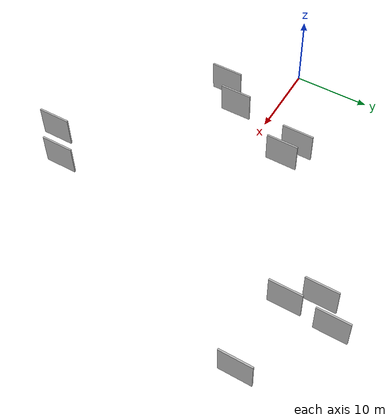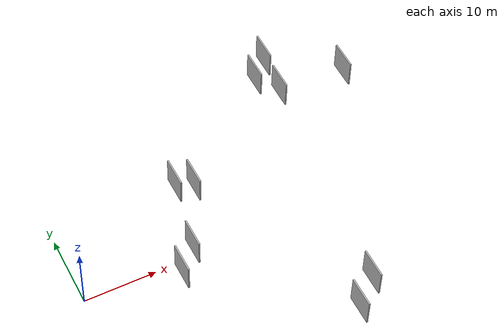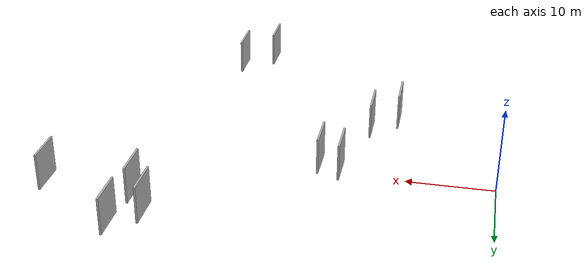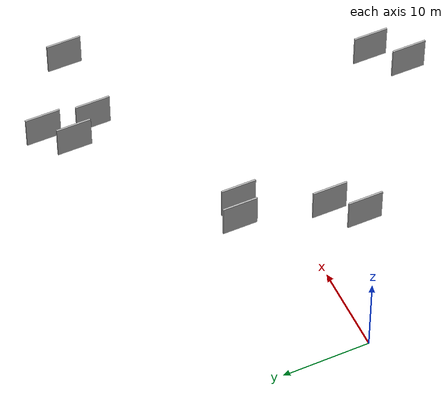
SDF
<sdf version="1.6">
 <world name="default">
  <scene>
   <sky><clouds><speed>12</speed></clouds></sky>
   <ambient>0.4 0.4 0.4 1</ambient>
   <background>0.7 0.7 0.7 1</background>
   <shadows>1</shadows>
  </scene>
  <gravity>0 0 -9.8066</gravity>
  <magnetic_field>6e-06 2.3e-05 -4.2e-05</magnetic_field>
  <physics default="0" name="default_physics" type="ode">
   <ode>
    <solver>
     <type>quick</type>
     <iters>10</iters>
     <sor>1.0</sor>
     <use_dynamic_moi_rescaling>0</use_dynamic_moi_rescaling>
    </solver>
    <constraints>
     <cfm>0</cfm>
     <erp>0.2</erp>
     <contact_max_correcting_vel>100</contact_max_correcting_vel>
     <contact_surface_layer>0.001</contact_surface_layer>
    </constraints>
   </ode>
   <max_step_size>0.004</max_step_size>
   <real_time_factor>1</real_time_factor>
   <real_time_update_rate>250</real_time_update_rate>
  </physics>
  <light name="sun" type="directional">
   <pose>0 0 10 0 0 0</pose>
   <diffuse>0.8 0.8 0.8 1</diffuse>
   <specular>0.2 0.2 0.2 1</specular>
   <attenuation>
    <range>1000</range>
    <constant>0.9</constant>
    <linear>0.01</linear>
    <quadratic>0.001</quadratic>
   </attenuation>
   <direction>-0.5 0.1 -0.9</direction>
  </light>
  <model name="grey_wall_1">
   <static>1</static>
   <pose>45.4667 15.5081 5.0 0.000000 0.000000 1.570796</pose>
   <link name="link">
    <pose>0 0 2.00 0 0 0</pose>
    <collision name="collision"><geometry><box><size>4.00 0.2 4.00</size></box></geometry></collision>
    <visual name="visual">
     <cast_shadows>0</cast_shadows>
     <geometry><box><size>4.00 0.2 4.00</size></box></geometry>
     <material>
      <script>
       <uri>model://HANNAS_wall/materials/scripts</uri>
       <uri>model://HANNAS_wall/materials/textures</uri>
       <name>vrc/HANNAS_wall</name>
      </script>
     </material>
    </visual>
   </link>
  </model>
  <model name="grey_wall_2">
   <static>1</static>
   <pose>33.8259 19.1867 5.0 0.000000 0.000000 1.570796</pose>
   <link name="link">
    <pose>0 0 2.00 0 0 0</pose>
    <collision name="collision"><geometry><box><size>4.00 0.2 4.00</size></box></geometry></collision>
    <visual name="visual">
     <cast_shadows>0</cast_shadows>
     <geometry><box><size>4.00 0.2 4.00</size></box></geometry>
     <material>
      <script>
       <uri>model://HANNAS_wall/materials/scripts</uri>
       <uri>model://HANNAS_wall/materials/textures</uri>
       <name>vrc/HANNAS_wall</name>
      </script>
     </material>
    </visual>
   </link>
  </model>
  <model name="grey_wall_3">
   <static>1</static>
   <pose>14.2623 -2.1681 5.0 0.000000 0.000000 1.570796</pose>
   <link name="link">
    <pose>0 0 2.00 0 0 0</pose>
    <collision name="collision"><geometry><box><size>4.00 0.2 4.00</size></box></geometry></collision>
    <visual name="visual">
     <cast_shadows>0</cast_shadows>
     <geometry><box><size>4.00 0.2 4.00</size></box></geometry>
     <material>
      <script>
       <uri>model://HANNAS_wall/materials/scripts</uri>
       <uri>model://HANNAS_wall/materials/textures</uri>
       <name>vrc/HANNAS_wall</name>
      </script>
     </material>
    </visual>
   </link>
  </model>
  <model name="grey_wall_4">
   <static>1</static>
   <pose>18.6056 6.5517 5.0 0.000000 0.000000 1.570796</pose>
   <link name="link">
    <pose>0 0 2.00 0 0 0</pose>
    <collision name="collision"><geometry><box><size>4.00 0.2 4.00</size></box></geometry></collision>
    <visual name="visual">
     <cast_shadows>0</cast_shadows>
     <geometry><box><size>4.00 0.2 4.00</size></box></geometry>
     <material>
      <script>
       <uri>model://HANNAS_wall/materials/scripts</uri>
       <uri>model://HANNAS_wall/materials/textures</uri>
       <name>vrc/HANNAS_wall</name>
      </script>
     </material>
    </visual>
   </link>
  </model>
  <model name="grey_wall_5">
   <static>1</static>
   <pose>16.3063 7.4288 5.0 0.000000 0.000000 1.570796</pose>
   <link name="link">
    <pose>0 0 2.00 0 0 0</pose>
    <collision name="collision"><geometry><box><size>4.00 0.2 4.00</size></box></geometry></collision>
    <visual name="visual">
     <cast_shadows>0</cast_shadows>
     <geometry><box><size>4.00 0.2 4.00</size></box></geometry>
     <material>
      <script>
       <uri>model://HANNAS_wall/materials/scripts</uri>
       <uri>model://HANNAS_wall/materials/textures</uri>
       <name>vrc/HANNAS_wall</name>
      </script>
     </material>
    </visual>
   </link>
  </model>
  <model name="grey_wall_6">
   <static>1</static>
   <pose>36.4993 21.7301 5.0 0.000000 0.000000 1.570796</pose>
   <link name="link">
    <pose>0 0 2.00 0 0 0</pose>
    <collision name="collision"><geometry><box><size>4.00 0.2 4.00</size></box></geometry></collision>
    <visual name="visual">
     <cast_shadows>0</cast_shadows>
     <geometry><box><size>4.00 0.2 4.00</size></box></geometry>
     <material>
      <script>
       <uri>model://HANNAS_wall/materials/scripts</uri>
       <uri>model://HANNAS_wall/materials/textures</uri>
       <name>vrc/HANNAS_wall</name>
      </script>
     </material>
    </visual>
   </link>
  </model>
  <model name="grey_wall_7">
   <static>1</static>
   <pose>32.1900 -15.9939 5.0 0.000000 0.000000 1.570796</pose>
   <link name="link">
    <pose>0 0 2.00 0 0 0</pose>
    <collision name="collision"><geometry><box><size>4.00 0.2 4.00</size></box></geometry></collision>
    <visual name="visual">
     <cast_shadows>0</cast_shadows>
     <geometry><box><size>4.00 0.2 4.00</size></box></geometry>
     <material>
      <script>
       <uri>model://HANNAS_wall/materials/scripts</uri>
       <uri>model://HANNAS_wall/materials/textures</uri>
       <name>vrc/HANNAS_wall</name>
      </script>
     </material>
    </visual>
   </link>
  </model>
  <model name="grey_wall_8">
   <static>1</static>
   <pose>11.4599 -5.0060 5.0 0.000000 0.000000 1.570796</pose>
   <link name="link">
    <pose>0 0 2.00 0 0 0</pose>
    <collision name="collision"><geometry><box><size>4.00 0.2 4.00</size></box></geometry></collision>
    <visual name="visual">
     <cast_shadows>0</cast_shadows>
     <geometry><box><size>4.00 0.2 4.00</size></box></geometry>
     <material>
      <script>
       <uri>model://HANNAS_wall/materials/scripts</uri>
       <uri>model://HANNAS_wall/materials/textures</uri>
       <name>vrc/HANNAS_wall</name>
      </script>
     </material>
    </visual>
   </link>
  </model>
  <model name="grey_wall_9">
   <static>1</static>
   <pose>35.9802 16.0552 5.0 0.000000 0.000000 1.570796</pose>
   <link name="link">
    <pose>0 0 2.00 0 0 0</pose>
    <collision name="collision"><geometry><box><size>4.00 0.2 4.00</size></box></geometry></collision>
    <visual name="visual">
     <cast_shadows>0</cast_shadows>
     <geometry><box><size>4.00 0.2 4.00</size></box></geometry>
     <material>
      <script>
       <uri>model://HANNAS_wall/materials/scripts</uri>
       <uri>model://HANNAS_wall/materials/textures</uri>
       <name>vrc/HANNAS_wall</name>
      </script>
     </material>
    </visual>
   </link>
  </model>
  <model name="grey_wall_10">
   <static>1</static>
   <pose>28.7826 -19.0366 5.0 0.000000 0.000000 1.570796</pose>
   <link name="link">
    <pose>0 0 2.00 0 0 0</pose>
    <collision name="collision"><geometry><box><size>4.00 0.2 4.00</size></box></geometry></collision>
    <visual name="visual">
     <cast_shadows>0</cast_shadows>
     <geometry><box><size>4.00 0.2 4.00</size></box></geometry>
     <material>
      <script>
       <uri>model://HANNAS_wall/materials/scripts</uri>
       <uri>model://HANNAS_wall/materials/textures</uri>
       <name>vrc/HANNAS_wall</name>
      </script>
     </material>
    </visual>
   </link>
  </model>
 </world>
</sdf>
